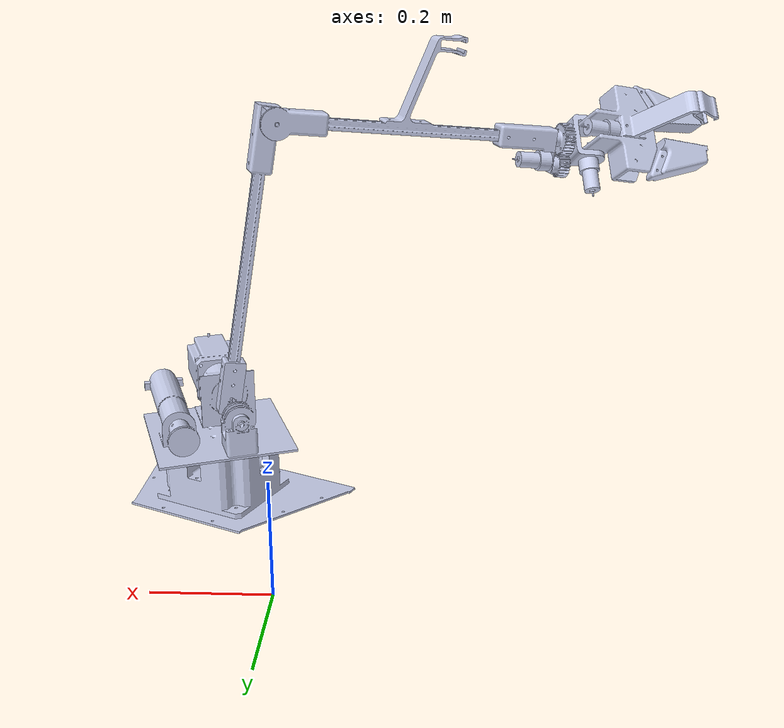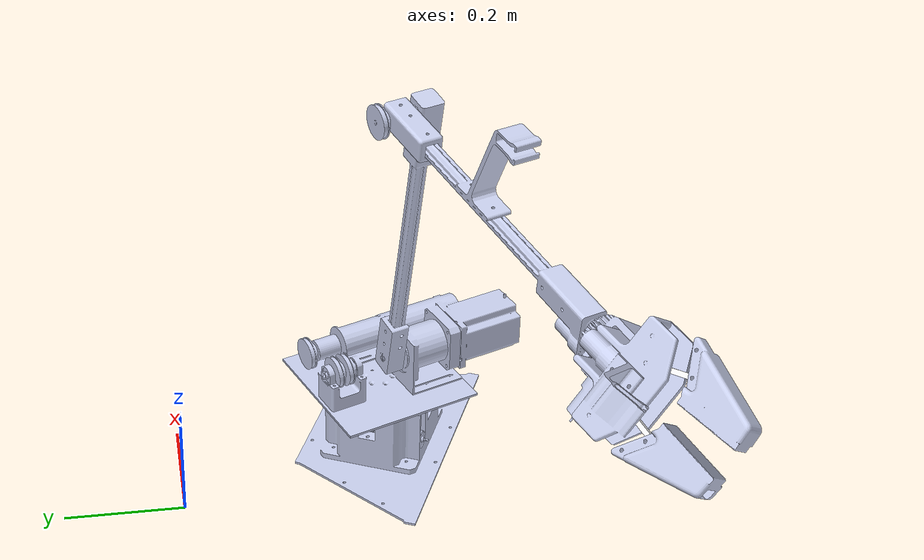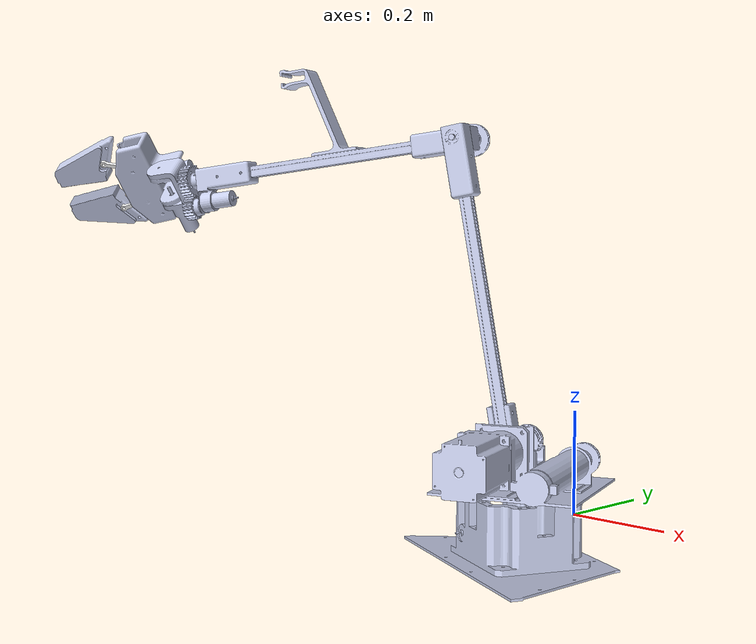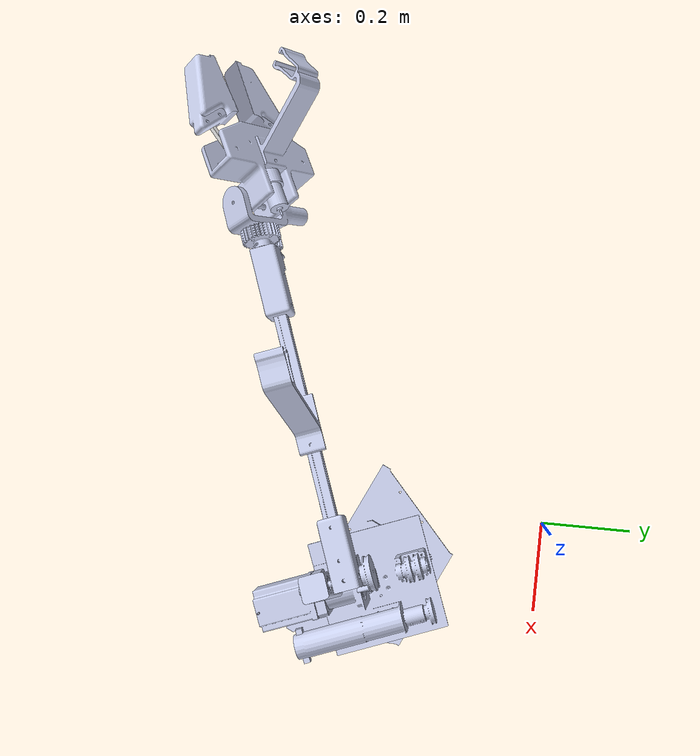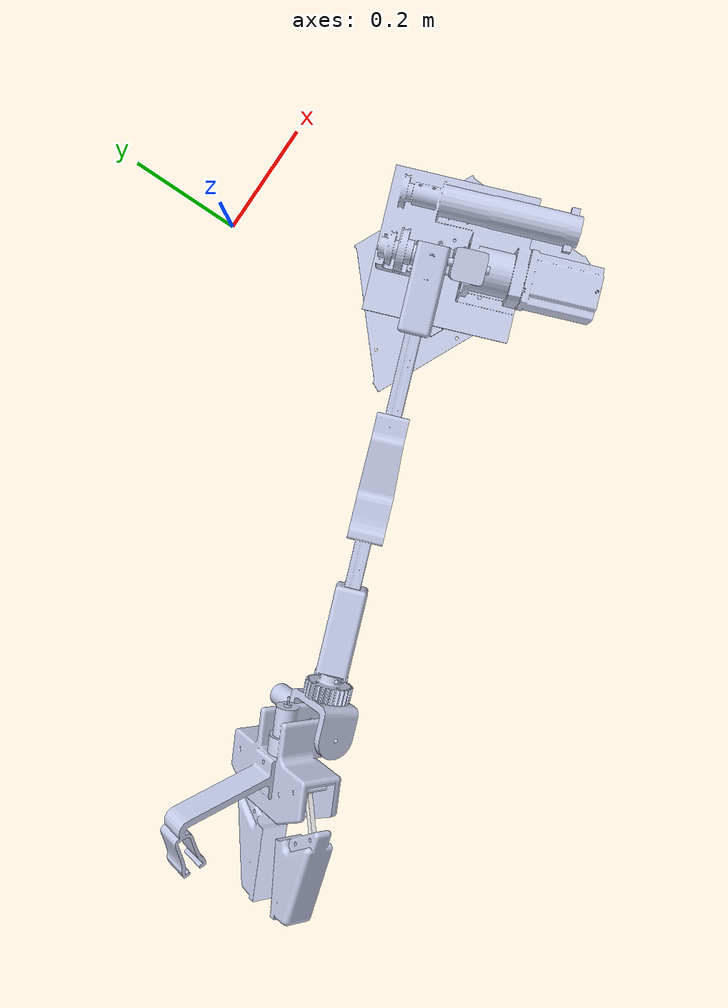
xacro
<?xml version="1.0"?>
<robot xmlns:xacro="http://www.ros.org/wiki/xacro" name="leg_assembly">
    <xacro:arg name="initial_positions_file" default="initial_positions.yaml" />

    <!-- Import leg_assembly urdf file -->
    <xacro:include filename="$(find leg_assembly)/urdf/leg_assembly.urdf" />

    <!-- Import control_xacro -->
    <xacro:include filename="leg_assembly.ros2_control.xacro" />

    <xacro:leg_assembly_ros2_control name="FakeSystem" initial_positions_file="$(arg initial_positions_file)"/>

</robot>

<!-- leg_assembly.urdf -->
<robot
  name="leg_assembly">
  <link
    name="base_link">
    <inertial>
      <origin
        xyz="0.150594316389524 0.0678493446135312 0.347863951717185"
        rpy="0 0 0" />
      <mass
        value="0.0101653880980363" />
      <inertia
        ixx="1.0048246878099E-05"
        ixy="-7.3468396926393E-37"
        ixz="-1.53688779177998E-21"
        iyy="1.5157875001342E-07"
        iyz="3.82929478237882E-22"
        izz="1.0048246878099E-05" />
    </inertial>
    <visual>
      <origin
        xyz="0 0 0"
        rpy="0 0 0" />
      <geometry>
        <mesh
          filename="package://leg_assembly/meshes/base_link.STL" />
      </geometry>
      <material
        name="">
        <color
          rgba="0.792156862745098 0.819607843137255 0.933333333333333 1" />
      </material>
    </visual>
    <collision>
      <origin
        xyz="0 0 0"
        rpy="0 0 0" />
      <geometry>
        <mesh
          filename="package://leg_assembly/meshes/base_link.STL" />
      </geometry>
    </collision>
  </link>
  <link
    name="link_1">
    <inertial>
      <origin
        xyz="-0.0614185793985458 0.127225993323511 -0.103015532344665"
        rpy="0 0 0" />
      <mass
        value="14.3172515097003" />
      <inertia
        ixx="1.47051720779902"
        ixy="-0.0975033756736119"
        ixz="0.162957766718895"
        iyy="1.06376569521041"
        iyz="0.590486867173748"
        izz="0.673327903454145" />
    </inertial>
    <visual>
      <origin
        xyz="0 0 0"
        rpy="0 0 0" />
      <geometry>
        <mesh
          filename="package://leg_assembly/meshes/link_1.STL" />
      </geometry>
      <material
        name="">
        <color
          rgba="0.792156862745098 0.819607843137255 0.933333333333333 1" />
      </material>
    </visual>
    <collision>
      <origin
        xyz="0 0 0"
        rpy="0 0 0" />
      <geometry>
        <mesh
          filename="package://leg_assembly/meshes/link_1.STL" />
      </geometry>
    </collision>
  </link>
  <joint
    name="base_joint"
    type="continuous">
    <origin
      xyz="0.150594316389524 -0.347863951717185 0.102099344613531"
      rpy="1.5707963267949 0 1.92899218657778" />
    <parent
      link="base_link" />
    <child
      link="link_1" />
    <axis
      xyz="0 1 0" />
  </joint>
  <link
    name="link_2">
    <inertial>
      <origin
        xyz="-0.0614185793985462 0.0860431898520337 -0.0252770894795993"
        rpy="0 0 0" />
      <mass
        value="14.3172515097003" />
      <inertia
        ixx="1.47051720779902"
        ixy="-0.183407254561084"
        ixz="0.049233331962452"
        iyy="0.28463001287987"
        iyz="0.21407088571695"
        izz="1.45246358578468" />
    </inertial>
    <visual>
      <origin
        xyz="0 0 0"
        rpy="0 0 0" />
      <geometry>
        <mesh
          filename="package://leg_assembly/meshes/link_2.STL" />
      </geometry>
      <material
        name="">
        <color
          rgba="0.792156862745098 0.819607843137255 0.933333333333333 1" />
      </material>
    </visual>
    <collision>
      <origin
        xyz="0 0 0"
        rpy="0 0 0" />
      <geometry>
        <mesh
          filename="package://leg_assembly/meshes/link_2.STL" />
      </geometry>
    </collision>
  </link>
  <joint
    name="shoulder_joint"
    type="continuous">
    <origin
      xyz="0 0.0829999999999999 -0.0249999999999991"
      rpy="-0.769347148250491 0 0" />
    <parent
      link="link_1" />
    <child
      link="link_2" />
    <axis
      xyz="1 0 0" />
  </joint>
  <link
    name="link_3">
    <inertial>
      <origin
        xyz="0.0349999999999945 -0.200848271626628 -0.50117220412209"
        rpy="0 0 0" />
      <mass
        value="0.003071007349849" />
      <inertia
        ixx="3.31492210861076E-07"
        ixy="1.85702047518155E-22"
        ixz="4.6983858793012E-22"
        iyy="2.91588594850019E-07"
        iyz="-9.95706013636013E-08"
        izz="8.3035914239687E-08" />
    </inertial>
    <visual>
      <origin
        xyz="0 0 0"
        rpy="0 0 0" />
      <geometry>
        <mesh
          filename="package://leg_assembly/meshes/link_3.STL" />
      </geometry>
      <material
        name="">
        <color
          rgba="0.792156862745098 0.819607843137255 0.933333333333333 1" />
      </material>
    </visual>
    <collision>
      <origin
        xyz="0 0 0"
        rpy="0 0 0" />
      <geometry>
        <mesh
          filename="package://leg_assembly/meshes/link_3.STL" />
      </geometry>
    </collision>
  </link>
  <joint
    name="elbow_joint"
    type="continuous">
    <origin
      xyz="0 0.433165678176262 0.292848996327625"
      rpy="1.03040234769901 0 0" />
    <parent
      link="link_2" />
    <child
      link="link_3" />
    <axis
      xyz="1 0 0" />
  </joint>
  <link
    name="link_4">
    <inertial>
      <origin
        xyz="0.320431980343591 -0.376269057917054 0.473731650433522"
        rpy="0 0 0" />
      <mass
        value="14.3172515097003" />
      <inertia
        ixx="1.22299869199904"
        ixy="0.315862841528246"
        ixz="-0.397130167812801"
        iyy="1.12261703452718"
        iyz="0.501432352642655"
        izz="0.861995079937343" />
    </inertial>
    <visual>
      <origin
        xyz="0 0 0"
        rpy="0 0 0" />
      <geometry>
        <mesh
          filename="package://leg_assembly/meshes/link_4.STL" />
      </geometry>
      <material
        name="">
        <color
          rgba="0.792156862745098 0.819607843137255 0.933333333333333 1" />
      </material>
    </visual>
    <collision>
      <origin
        xyz="0 0 0"
        rpy="0 0 0" />
      <geometry>
        <mesh
          filename="package://leg_assembly/meshes/link_4.STL" />
      </geometry>
    </collision>
  </link>
  <joint
    name="wrist_roll"
    type="continuous">
    <origin
      xyz="0.0349999999999992 -0.198274893934871 -0.494750912271433"
      rpy="-0.276225881664695 -0.304270113720173 -0.900391226843565" />
    <parent
      link="link_3" />
    <child
      link="link_4" />
    <axis
      xyz="0 0.0429812476264269 -0.99907587917659" />
  </joint>
  <link
    name="end_effector">
    <inertial>
      <origin
        xyz="2.22044604925031E-16 0.0152130621288969 -0.0798538250989508"
        rpy="0 0 0" />
      <mass
        value="0.00512941577019471" />
      <inertia
        ixx="1.25499198245662E-06"
        ixy="-3.4146015686189E-21"
        ixz="1.42275065359121E-21"
        iyy="1.90379021308943E-07"
        iyz="4.26651102034632E-07"
        izz="1.08400856452872E-06" />
    </inertial>
    <visual>
      <origin
        xyz="0 0 0"
        rpy="0 0 0" />
      <geometry>
        <mesh
          filename="package://leg_assembly/meshes/end_effector.STL" />
      </geometry>
      <material
        name="">
        <color
          rgba="0.792156862745098 0.819607843137255 0.933333333333333 1" />
      </material>
    </visual>
    <collision>
      <origin
        xyz="0 0 0"
        rpy="0 0 0" />
      <geometry>
        <mesh
          filename="package://leg_assembly/meshes/end_effector.STL" />
      </geometry>
    </collision>
  </link>
  <joint
    name="wrist_pitch"
    type="continuous">
    <origin
      xyz="0 0.0021491 -0.049954"
      rpy="0.29533 0 0" />
    <parent
      link="link_4" />
    <child
      link="end_effector" />
    <axis
      xyz="1 0 0" />
  </joint>
  <link
    name="finger_link_left">
    <inertial>
      <origin
        xyz="0 0.0265129074172366 0.0295580095320563"
        rpy="0 0 0" />
      <mass
        value="0.00369323716533971" />
      <inertia
        ixx="1.64319292473695E-06"
        ixy="5.29395592033938E-23"
        ixz="9.27269466671944E-22"
        iyy="1.65626520145604E-06"
        iyz="4.57265442619314E-21"
        izz="3.9078821758365E-08" />
    </inertial>
    <visual>
      <origin
        xyz="0 0 0"
        rpy="0 0 0" />
      <geometry>
        <mesh
          filename="package://leg_assembly/meshes/finger_link_left.STL" />
      </geometry>
      <material
        name="">
        <color
          rgba="1 1 1 1" />
      </material>
    </visual>
    <collision>
      <origin
        xyz="0 0 0"
        rpy="0 0 0" />
      <geometry>
        <mesh
          filename="package://leg_assembly/meshes/finger_link_left.STL" />
      </geometry>
    </collision>
  </link>
  <joint
    name="finger_joint_left"
    type="continuous">
    <origin
      xyz="-0.0350000000000005 -0.0252122416049434 -0.0725251018483113"
      rpy="-2.72838699915497 -0.386039781368848 2.97798281371752" />
    <parent
      link="end_effector" />
    <child
      link="finger_link_left" />
    <axis
      xyz="0 1 0" />
  </joint>
  <link
    name="finger_tip_left">
    <inertial>
      <origin
        xyz="-0.116970106234662 -0.175351334282535 0.816276217430182"
        rpy="0 0 0" />
      <mass
        value="14.3172515097003" />
      <inertia
        ixx="1.47116642312389"
        ixy="-0.0431428215248987"
        ixz="0.0989108612375278"
        iyy="1.37410627950981"
        iyz="0.393564230132815"
        izz="0.362338103829861" />
    </inertial>
    <visual>
      <origin
        xyz="0 0 0"
        rpy="0 0 0" />
      <geometry>
        <mesh
          filename="package://leg_assembly/meshes/finger_tip_left.STL" />
      </geometry>
      <material
        name="">
        <color
          rgba="0.792156862745098 0.819607843137255 0.933333333333333 1" />
      </material>
    </visual>
    <collision>
      <origin
        xyz="0 0 0"
        rpy="0 0 0" />
      <geometry>
        <mesh
          filename="package://leg_assembly/meshes/finger_tip_left.STL" />
      </geometry>
    </collision>
  </link>
  <joint
    name="finger_j1"
    type="continuous">
    <origin
      xyz="0 0 0.0599999999999998"
      rpy="-2.81843607467865 -0.292711741710647 -3.14159265358978" />
    <parent
      link="finger_link_left" />
    <child
      link="finger_tip_left" />
    <axis
      xyz="0 0.948237736477631 -0.317561324974845" />
  </joint>
  <link
    name="finger_link_right">
    <inertial>
      <origin
        xyz="1.11022302462516E-16 0.019589295354482 0.0295580095320566"
        rpy="0 0 0" />
      <mass
        value="0.00369323716533973" />
      <inertia
        ixx="1.64319292473697E-06"
        ixy="-5.29395592033938E-23"
        ixz="9.40504356472792E-22"
        iyy="1.65626520145607E-06"
        iyz="6.24025054110004E-21"
        izz="3.90788217583653E-08" />
    </inertial>
    <visual>
      <origin
        xyz="0 0 0"
        rpy="0 0 0" />
      <geometry>
        <mesh
          filename="package://leg_assembly/meshes/finger_link_right.STL" />
      </geometry>
      <material
        name="">
        <color
          rgba="1 1 1 1" />
      </material>
    </visual>
    <collision>
      <origin
        xyz="0 0 0"
        rpy="0 0 0" />
      <geometry>
        <mesh
          filename="package://leg_assembly/meshes/finger_link_right.STL" />
      </geometry>
    </collision>
  </link>
  <joint
    name="finger_joint_right"
    type="continuous">
    <origin
      xyz="0.035 -0.018786 -0.075101"
      rpy="-2.7586 0.095478 -3.1032" />
    <parent
      link="end_effector" />
    <child
      link="finger_link_right" />
    <axis
      xyz="0 1 0" />
    <mimic
      joint="finger_joint_left"
      multiplier="1"
      offset="0" />
  </joint>
  <link
    name="finger_tip_right">
    <inertial>
      <origin
        xyz="-0.21008 -0.20292 0.75576"
        rpy="0 0 0" />
      <mass
        value="14.317" />
      <inertia
        ixx="1.4675"
        ixy="-0.050352"
        ixz="0.11832"
        iyy="1.3735"
        iyz="0.39336"
        izz="0.36667" />
    </inertial>
    <visual>
      <origin
        xyz="0 0 0"
        rpy="0 0 0" />
      <geometry>
        <mesh
          filename="package://leg_assembly/meshes/finger_tip_right.STL" />
      </geometry>
      <material
        name="">
        <color
          rgba="0.79216 0.81961 0.93333 1" />
      </material>
    </visual>
    <collision>
      <origin
        xyz="0 0 0"
        rpy="0 0 0" />
      <geometry>
        <mesh
          filename="package://leg_assembly/meshes/finger_tip_right.STL" />
      </geometry>
    </collision>
  </link>
  <joint
    name="finger_j2"
    type="continuous">
    <origin
      xyz="0 0 0.06"
      rpy="-2.8184 -0.8343 -3.1416" />
    <parent
      link="finger_link_right" />
    <child
      link="finger_tip_right" />
    <axis
      xyz="0 0.94824 -0.31756" />
    <mimic
      joint="finger_j1"
      multiplier="1"
      offset="0" />
  </joint>

</robot>
